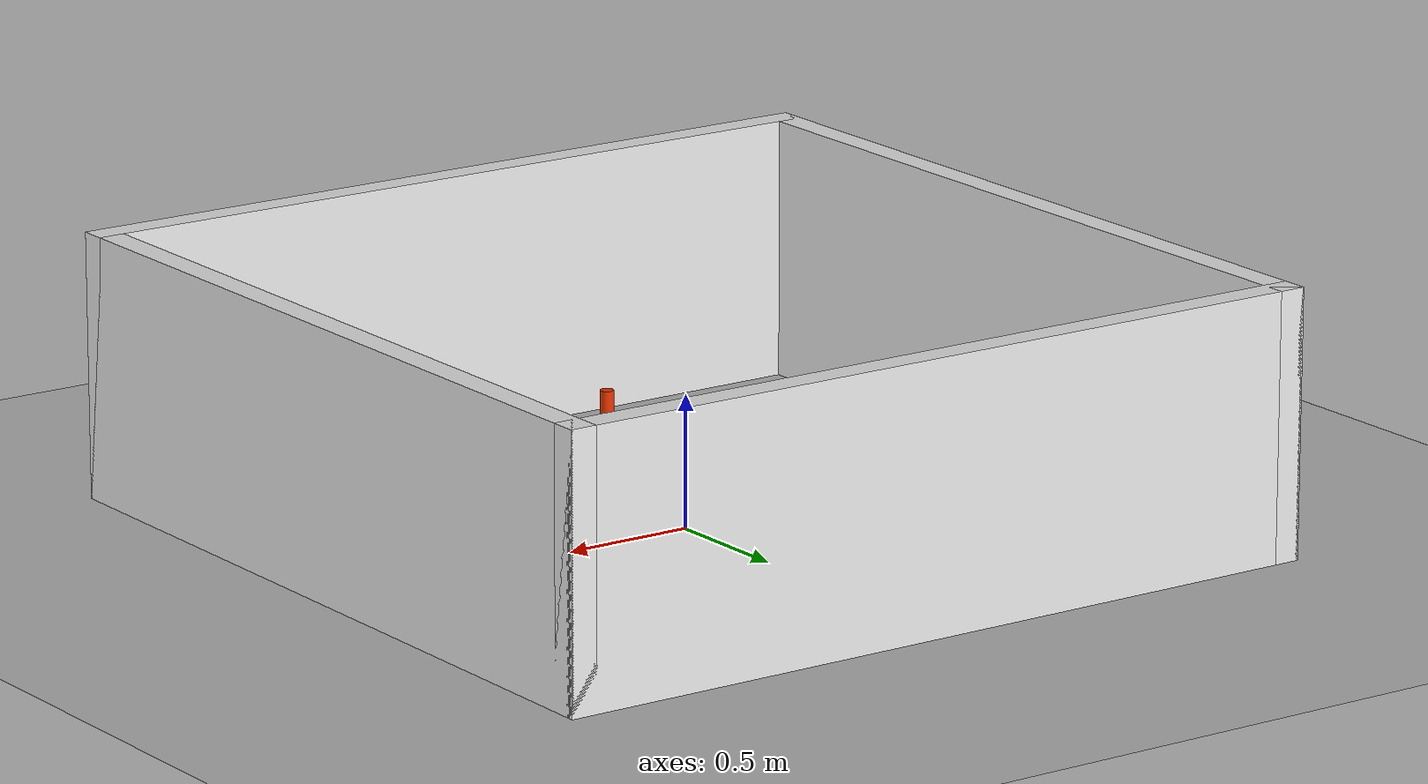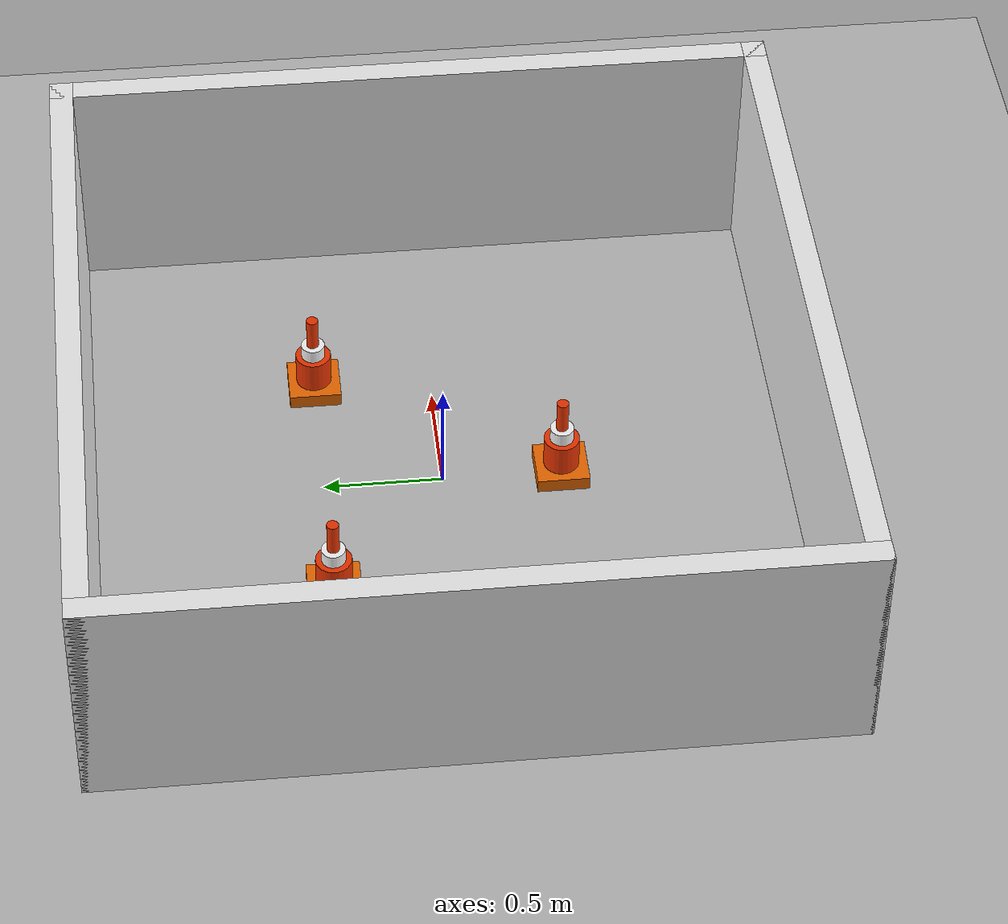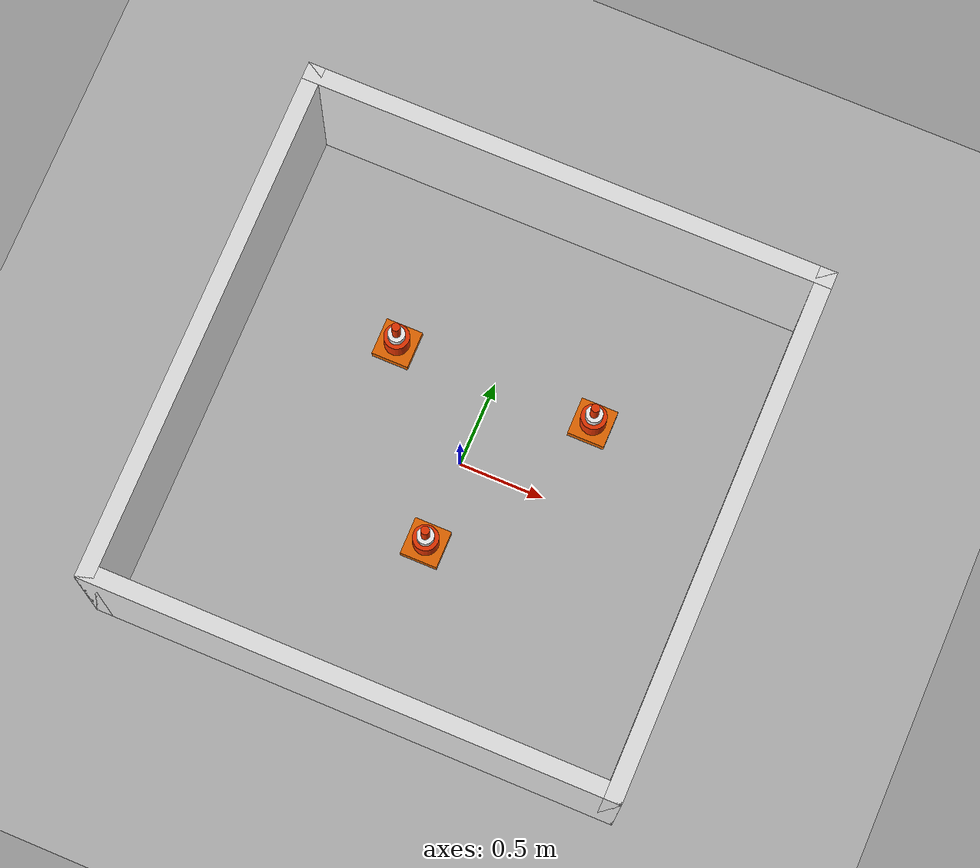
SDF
<?xml version="1.0" ?>
<sdf version="1.6">
  <world name="cone_world">

    <physics name="default_physics" type="ode">
      <max_step_size>0.004</max_step_size>
      <real_time_factor>1.0</real_time_factor>
      <real_time_update_rate>250</real_time_update_rate>
    </physics>

    <plugin filename="ignition-gazebo-physics-system"
      name="ignition::gazebo::systems::Physics"/>
    <plugin filename="ignition-gazebo-sensors-system"
      name="ignition::gazebo::systems::Sensors">
      <render_engine>ogre2</render_engine>
    </plugin>
    <plugin filename="ignition-gazebo-scene-broadcaster-system"
      name="ignition::gazebo::systems::SceneBroadcaster"/>
    <plugin filename="ignition-gazebo-user-commands-system"
      name="ignition::gazebo::systems::UserCommands"/>

    <scene>
      <ambient>0.8 0.8 0.8 1</ambient>
      <background>0.3 0.3 0.3 1</background>
      <shadows>false</shadows>
    </scene>

    <light type="directional" name="sun">
      <cast_shadows>false</cast_shadows>
      <pose>0 0 5 0 0 0</pose>
      <diffuse>1.0 1.0 1.0 1</diffuse>
      <specular>0.2 0.2 0.2 1</specular>
      <attenuation>
        <range>100</range>
        <constant>0.9</constant>
        <linear>0.01</linear>
        <quadratic>0.001</quadratic>
      </attenuation>
      <direction>0 0 -1</direction>
    </light>

    <!-- ==================== GROUND ==================== -->
    <model name="ground_plane">
      <static>true</static>
      <link name="link">
        <collision name="collision">
          <geometry><plane><normal>0 0 1</normal></plane></geometry>
        </collision>
        <visual name="visual">
          <geometry><plane><normal>0 0 1</normal><size>20 20</size></plane></geometry>
          <material>
            <ambient>0.7 0.7 0.7 1</ambient>
            <diffuse>0.7 0.7 0.7 1</diffuse>
          </material>
        </visual>
      </link>
    </model>

    <!-- ==================== WALLS (3x3m room) ==================== -->

    <model name="wall_north">
      <static>true</static>
      <pose>0 1.5 0.5 0 0 0</pose>
      <link name="link">
        <collision name="collision">
          <geometry><box><size>3.1 0.1 1.0</size></box></geometry>
        </collision>
        <visual name="visual">
          <geometry><box><size>3.1 0.1 1.0</size></box></geometry>
          <material>
            <ambient>0.9 0.9 0.9 1</ambient>
            <diffuse>0.9 0.9 0.9 1</diffuse>
          </material>
        </visual>
      </link>
    </model>

    <model name="wall_south">
      <static>true</static>
      <pose>0 -1.5 0.5 0 0 0</pose>
      <link name="link">
        <collision name="collision">
          <geometry><box><size>3.1 0.1 1.0</size></box></geometry>
        </collision>
        <visual name="visual">
          <geometry><box><size>3.1 0.1 1.0</size></box></geometry>
          <material>
            <ambient>0.9 0.9 0.9 1</ambient>
            <diffuse>0.9 0.9 0.9 1</diffuse>
          </material>
        </visual>
      </link>
    </model>

    <model name="wall_east">
      <static>true</static>
      <pose>1.5 0 0.5 0 0 0</pose>
      <link name="link">
        <collision name="collision">
          <geometry><box><size>0.1 3.1 1.0</size></box></geometry>
        </collision>
        <visual name="visual">
          <geometry><box><size>0.1 3.1 1.0</size></box></geometry>
          <material>
            <ambient>0.9 0.9 0.9 1</ambient>
            <diffuse>0.9 0.9 0.9 1</diffuse>
          </material>
        </visual>
      </link>
    </model>

    <model name="wall_west">
      <static>true</static>
      <pose>-1.5 0 0.5 0 0 0</pose>
      <link name="link">
        <collision name="collision">
          <geometry><box><size>0.1 3.1 1.0</size></box></geometry>
        </collision>
        <visual name="visual">
          <geometry><box><size>0.1 3.1 1.0</size></box></geometry>
          <material>
            <ambient>0.9 0.9 0.9 1</ambient>
            <diffuse>0.9 0.9 0.9 1</diffuse>
          </material>
        </visual>
      </link>
    </model>

    <!-- ==================== CONE 1 — Left ==================== -->
    <model name="cone_1">
      <static>true</static>
      <pose>-0.6 0.5 0.0 0 0 0</pose>
      <link name="link">
        <visual name="base">
          <pose>0 0 0.03 0 0 0</pose>
          <geometry><box><size>0.22 0.22 0.06</size></box></geometry>
          <material>
            <ambient>0.9 0.4 0.0 1</ambient>
            <diffuse>0.9 0.4 0.0 1</diffuse>
          </material>
        </visual>
        <visual name="lower">
          <pose>0 0 0.13 0 0 0</pose>
          <geometry><cylinder><radius>0.075</radius><length>0.14</length></cylinder></geometry>
          <material>
            <ambient>0.9 0.2 0.0 1</ambient>
            <diffuse>0.9 0.2 0.0 1</diffuse>
          </material>
        </visual>
        <visual name="stripe">
          <pose>0 0 0.23 0 0 0</pose>
          <geometry><cylinder><radius>0.05</radius><length>0.06</length></cylinder></geometry>
          <material>
            <ambient>0.95 0.95 0.95 1</ambient>
            <diffuse>0.95 0.95 0.95 1</diffuse>
          </material>
        </visual>
        <visual name="upper">
          <pose>0 0 0.33 0 0 0</pose>
          <geometry><cylinder><radius>0.025</radius><length>0.14</length></cylinder></geometry>
          <material>
            <ambient>0.9 0.2 0.0 1</ambient>
            <diffuse>0.9 0.2 0.0 1</diffuse>
          </material>
        </visual>
        <collision name="collision">
          <pose>0 0 0.2 0 0 0</pose>
          <geometry><cylinder><radius>0.075</radius><length>0.4</length></cylinder></geometry>
        </collision>
      </link>
    </model>

    <!-- ==================== CONE 2 — Right ==================== -->
    <model name="cone_2">
      <static>true</static>
      <pose>0.6 0.5 0.0 0 0 0</pose>
      <link name="link">
        <visual name="base">
          <pose>0 0 0.03 0 0 0</pose>
          <geometry><box><size>0.22 0.22 0.06</size></box></geometry>
          <material>
            <ambient>0.9 0.4 0.0 1</ambient>
            <diffuse>0.9 0.4 0.0 1</diffuse>
          </material>
        </visual>
        <visual name="lower">
          <pose>0 0 0.13 0 0 0</pose>
          <geometry><cylinder><radius>0.075</radius><length>0.14</length></cylinder></geometry>
          <material>
            <ambient>0.9 0.2 0.0 1</ambient>
            <diffuse>0.9 0.2 0.0 1</diffuse>
          </material>
        </visual>
        <visual name="stripe">
          <pose>0 0 0.23 0 0 0</pose>
          <geometry><cylinder><radius>0.05</radius><length>0.06</length></cylinder></geometry>
          <material>
            <ambient>0.95 0.95 0.95 1</ambient>
            <diffuse>0.95 0.95 0.95 1</diffuse>
          </material>
        </visual>
        <visual name="upper">
          <pose>0 0 0.33 0 0 0</pose>
          <geometry><cylinder><radius>0.025</radius><length>0.14</length></cylinder></geometry>
          <material>
            <ambient>0.9 0.2 0.0 1</ambient>
            <diffuse>0.9 0.2 0.0 1</diffuse>
          </material>
        </visual>
        <collision name="collision">
          <pose>0 0 0.2 0 0 0</pose>
          <geometry><cylinder><radius>0.075</radius><length>0.4</length></cylinder></geometry>
        </collision>
      </link>
    </model>

    <!-- ==================== CONE 3 — Center back ==================== -->
    <model name="cone_3">
      <static>true</static>
      <pose>0.0 -0.5 0.0 0 0 0</pose>
      <link name="link">
        <visual name="base">
          <pose>0 0 0.03 0 0 0</pose>
          <geometry><box><size>0.22 0.22 0.06</size></box></geometry>
          <material>
            <ambient>0.9 0.4 0.0 1</ambient>
            <diffuse>0.9 0.4 0.0 1</diffuse>
          </material>
        </visual>
        <visual name="lower">
          <pose>0 0 0.13 0 0 0</pose>
          <geometry><cylinder><radius>0.075</radius><length>0.14</length></cylinder></geometry>
          <material>
            <ambient>0.9 0.2 0.0 1</ambient>
            <diffuse>0.9 0.2 0.0 1</diffuse>
          </material>
        </visual>
        <visual name="stripe">
          <pose>0 0 0.23 0 0 0</pose>
          <geometry><cylinder><radius>0.05</radius><length>0.06</length></cylinder></geometry>
          <material>
            <ambient>0.95 0.95 0.95 1</ambient>
            <diffuse>0.95 0.95 0.95 1</diffuse>
          </material>
        </visual>
        <visual name="upper">
          <pose>0 0 0.33 0 0 0</pose>
          <geometry><cylinder><radius>0.025</radius><length>0.14</length></cylinder></geometry>
          <material>
            <ambient>0.9 0.2 0.0 1</ambient>
            <diffuse>0.9 0.2 0.0 1</diffuse>
          </material>
        </visual>
        <collision name="collision">
          <pose>0 0 0.2 0 0 0</pose>
          <geometry><cylinder><radius>0.075</radius><length>0.4</length></cylinder></geometry>
        </collision>
      </link>
    </model>

  </world>
</sdf>
